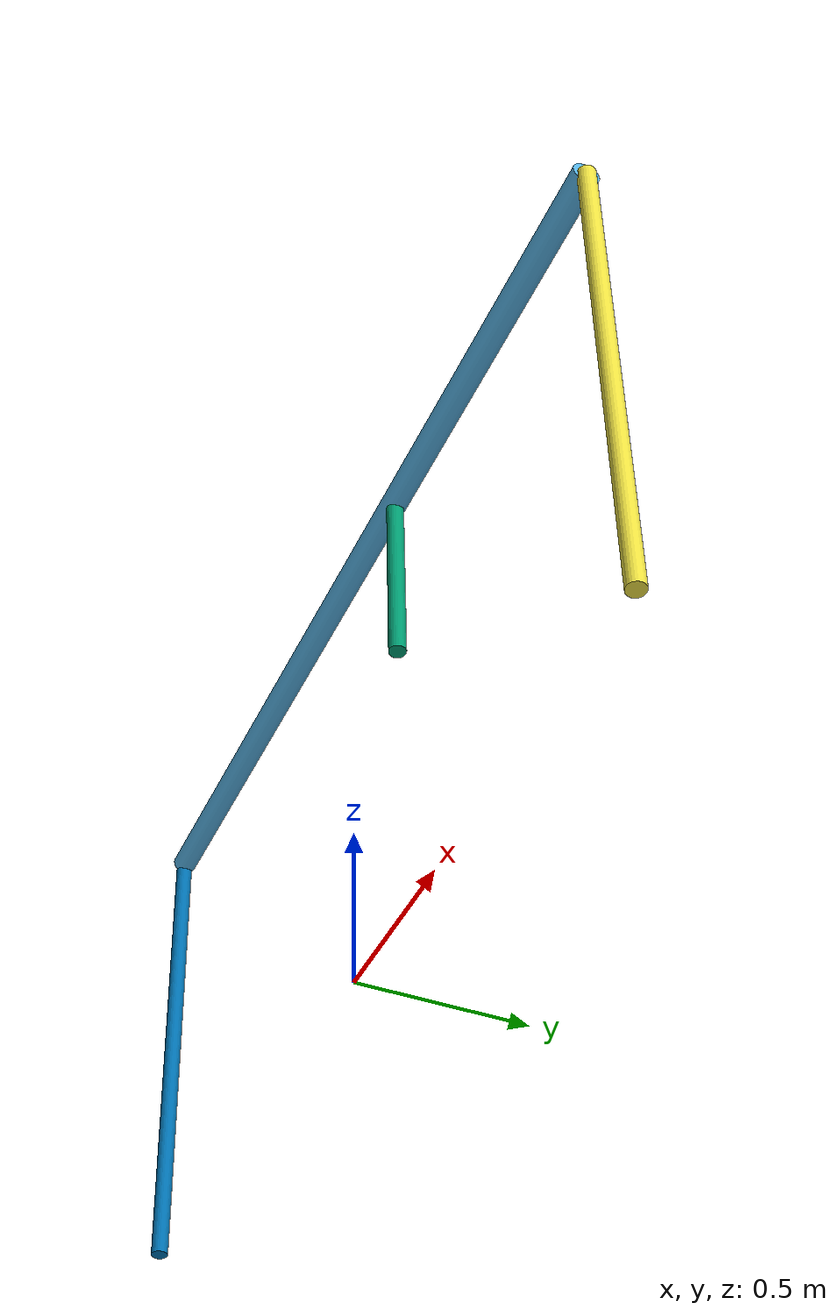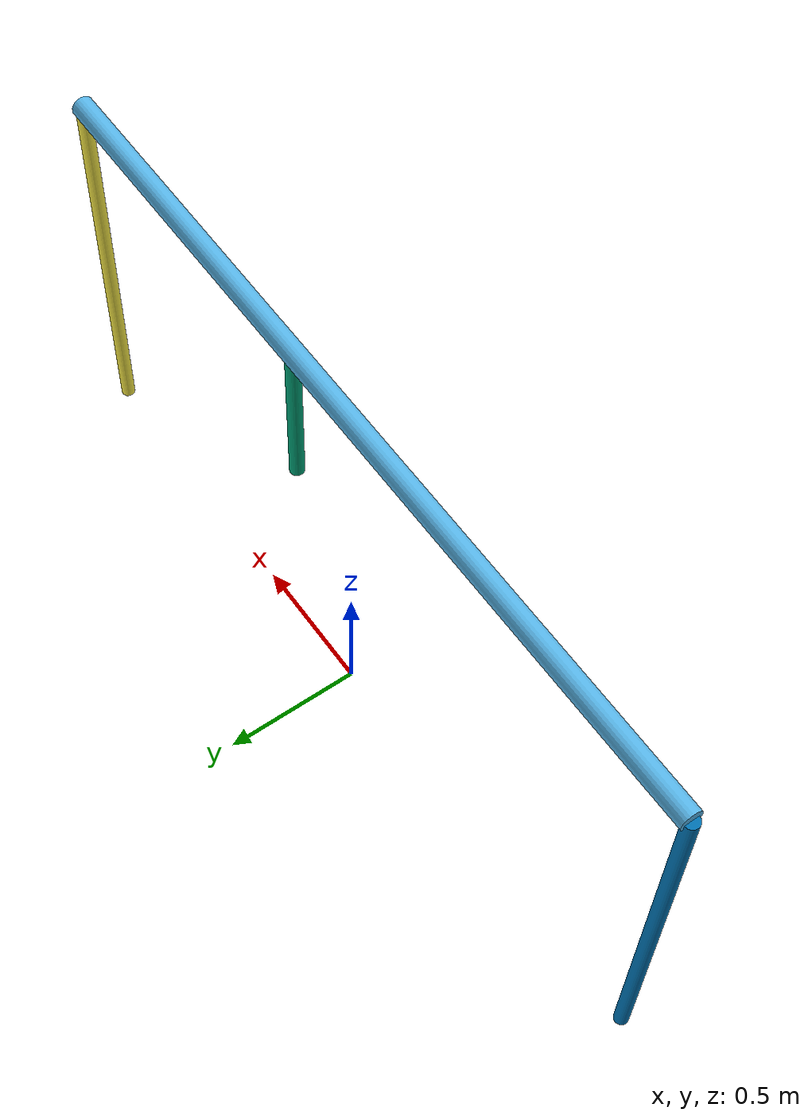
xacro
<?xml version="1.0"?>
<robot name="2019/gate" xmlns:xacro="http://www.ros.org/wiki/xacro">

<xacro:include filename="$(find aquadrone_sim_worlds)/competition_objects/common/common_shapes.urdf.xacro"/>

<gazebo>
    <static>true</static>
</gazebo>
<link name="base_link">
    <inertial>
      <origin xyz="0 0 0" />
      <mass value="1.0" />
      <inertia  ixx="1.0" ixy="0.0"  ixz="0.0"  iyy="100.0"  iyz="0.0"  izz="1.0" />
    </inertial>
</link>

<xacro:cylinder_link name="top" parent="base_link" radius="0.0381" length="3.048">
    <origin xyz="0 0 1.524" rpy="0 1.5707 0"/>
    <material>Gazebo/Black</material>
</xacro:cylinder_link>

<xacro:cylinder_link name="divider" parent="base_link" radius="0.0254" length="0.609">
    <origin xyz="${3.048/2.0 - 1.219} 0 ${1.524 - (0.609/2.0)}" rpy="0 0 0"/>
    <material>Gazebo/Black</material>
</xacro:cylinder_link>

<xacro:cylinder_link name="left_leg" parent="base_link" radius="0.0254" length="1.524">
    <origin xyz="${3.048/2.0} 0 ${1.524/2.0}" rpy="0 0 0"/>
    <material>Gazebo/Orange</material>
</xacro:cylinder_link>

<xacro:cylinder_link name="right_leg" parent="base_link" radius="0.0254" length="1.524">
    <origin xyz="${-3.048/2.0} 0 ${1.524/2.0}" rpy="0 0 0"/>
    <material>Gazebo/Orange</material>
</xacro:cylinder_link>

</robot>

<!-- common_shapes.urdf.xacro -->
<robot xmlns:xacro="http://www.ros.org/wiki/xacro">

<xacro:macro name="cylinder_link" params="parent name radius length *origin *material">

    <joint name="${name}_joint" type="fixed">
      <parent link="${parent}"/>
      <child link="${name}_link"/>
      <xacro:insert_block name="origin" />
    </joint>

    <link name="${name}_link">

      <visual>
        <origin xyz="0 0 0" rpy="0 0 0"/>
        <geometry>
          <cylinder radius="${radius}" length="${length}" />
        </geometry>
      </visual>
      <collision>
        <origin xyz="0 0 0" rpy="0 0 0"/>
        <geometry>
          <cylinder radius="${radius}" length="${length}" />
        </geometry>
      </collision>

    </link>

    <gazebo reference="${name}_link">
      <xacro:insert_block name="material" />
    </gazebo>

</xacro:macro>
</robot>
